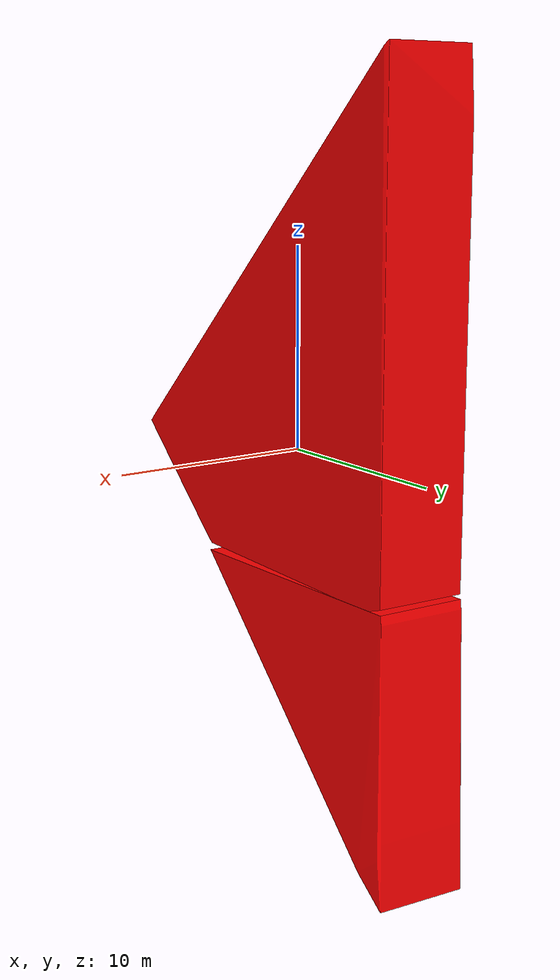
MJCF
<?xml version="1.0" encoding="utf-8"?>
<mujoco>
	<asset>
		<mesh file="holdouts/tangram/collision/0_base_triangle_20200509.stl" name="tangram0"/>
		<mesh file="holdouts/tangram/collision/1_base_triangle_20200509.stl" name="tangram1"/>
		<material name="block_mat" rgba="1.0 0 0 1.0" specular="0.25" shininess="0.10" reflectance="0.10"/>
	</asset>
	<worldbody>
		<body>
			<geom type="mesh" euler="0 0 0" mesh="tangram0" material="block_mat"/>
			<geom type="mesh" euler="0 0 0" mesh="tangram1" material="block_mat"/>
			<joint type="free"/>
		</body>
	</worldbody>
</mujoco>
